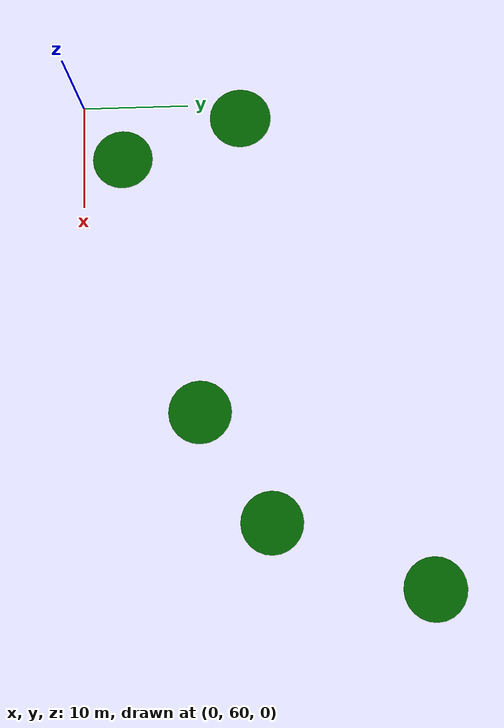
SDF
<sdf version="1.6">
 <world name="default">
  <model name="ground_plane">
   <static>1</static>
   <link name="link">
    <collision name="collision">
     <geometry><plane><normal>0 0 1</normal><size>100 100</size></plane></geometry>
     <surface><friction><ode><mu>100</mu><mu2>50</mu2></ode></friction></surface>
    </collision>
    <visual name="visual">
     <cast_shadows>0</cast_shadows>
     <geometry><plane><normal>0 0 1</normal><size>100 100</size></plane></geometry>
     <material>
      <script><uri>file://media/materials/scripts/gazebo.material</uri><name>Gazebo/Grey</name></script>
     </material>
    </visual>
   </link>
  </model>
  <model name="M16APM_point_clone_0">
   <link name="link">
    <inertial>
     <mass>1</mass>
     <inertia><ixx>0.145833</ixx><ixy>0</ixy><ixz>0</ixz><iyy>0.145833</iyy><iyz>0</iyz><izz>0.125</izz></inertia>
    </inertial>
    <gravity>0</gravity>
    <visual name="ModelPreview_1::link::visual_1">
     <geometry><cylinder><radius>3</radius><length>0.01</length></cylinder></geometry>
     <material>
      <script><name>Gazebo/Grey</name><uri>file://media/materials/scripts/gazebo.material</uri></script>
      <ambient>0 0.4 0 0</ambient>
      <diffuse>0 0.4 0 0</diffuse>
      <specular>0 0.41 0 0</specular>
      <emissive>0 0.4 0 0</emissive>
      <shader type="vertex"><normal_map>__default__</normal_map></shader>
     </material>
    </visual>
    <visual name="visual">
     <geometry><cylinder><radius>3</radius><length>0.005</length></cylinder></geometry>
     <material>
      <script><name>Gazebo/Grey</name><uri>file://media/materials/scripts/gazebo.material</uri></script>
      <ambient>0 0.4 0 0</ambient>
      <diffuse>0 0.4 0 0</diffuse>
      <specular>0 0.41 0 0</specular>
      <emissive>0 0.4 0 0</emissive>
      <shader type="vertex"><normal_map>__default__</normal_map></shader>
     </material>
    </visual>
   </link>
   <static>0</static>
   <pose>0.5 75 -2.1601 0 -0 0</pose>
  </model>
  <model name="M16APM_point_clone_0_clone_clone_clone_clone_clone_clone_clone_4">
   <link name="link">
    <inertial>
     <mass>1</mass>
     <inertia><ixx>0.145833</ixx><ixy>0</ixy><ixz>0</ixz><iyy>0.145833</iyy><iyz>0</iyz><izz>0.125</izz></inertia>
    </inertial>
    <gravity>0</gravity>
    <visual name="ModelPreview_1::link::visual_1">
     <geometry><cylinder><radius>3</radius><length>0.01</length></cylinder></geometry>
     <material>
      <script><name>Gazebo/Grey</name><uri>file://media/materials/scripts/gazebo.material</uri></script>
      <ambient>0 0.4 0 0</ambient>
      <diffuse>0 0.4 0 0</diffuse>
      <specular>0 0.41 0 0</specular>
      <emissive>0 0.4 0 0</emissive>
      <shader type="vertex"><normal_map>__default__</normal_map></shader>
     </material>
    </visual>
    <visual name="visual">
     <geometry><cylinder><radius>3</radius><length>0.005</length></cylinder></geometry>
     <material>
      <script><name>Gazebo/Grey</name><uri>file://media/materials/scripts/gazebo.material</uri></script>
      <ambient>0 0.4 0 0</ambient>
      <diffuse>0 0.4 0 0</diffuse>
      <specular>0 0.41 0 0</specular>
      <emissive>0 0.4 0 0</emissive>
      <shader type="vertex"><normal_map>__default__</normal_map></shader>
     </material>
    </visual>
   </link>
   <static>0</static>
   <pose>40 77 -4.2462 0 -0 0</pose>
  </model>
  <model name="M16APM_point_clone_0_clone_clone_clone_clone_clone_clone_clone_5">
   <link name="link">
    <inertial>
     <mass>1</mass>
     <inertia><ixx>0.145833</ixx><ixy>0</ixy><ixz>0</ixz><iyy>0.145833</iyy><iyz>0</iyz><izz>0.125</izz></inertia>
    </inertial>
    <gravity>0</gravity>
    <visual name="ModelPreview_1::link::visual_1">
     <geometry><cylinder><radius>3</radius><length>0.01</length></cylinder></geometry>
     <material>
      <script><name>Gazebo/Grey</name><uri>file://media/materials/scripts/gazebo.material</uri></script>
      <ambient>0 0.4 0 0</ambient>
      <diffuse>0 0.4 0 0</diffuse>
      <specular>0 0.41 0 0</specular>
      <emissive>0 0.4 0 0</emissive>
      <shader type="vertex"><normal_map>__default__</normal_map></shader>
     </material>
    </visual>
    <visual name="visual">
     <geometry><cylinder><radius>3</radius><length>0.005</length></cylinder></geometry>
     <material>
      <script><name>Gazebo/Grey</name><uri>file://media/materials/scripts/gazebo.material</uri></script>
      <ambient>0 0.4 0 0</ambient>
      <diffuse>0 0.4 0 0</diffuse>
      <specular>0 0.41 0 0</specular>
      <emissive>0 0.4 0 0</emissive>
      <shader type="vertex"><normal_map>__default__</normal_map></shader>
     </material>
    </visual>
   </link>
   <static>0</static>
   <pose>29.5 70.5 -2.6969 0 -0 0</pose>
  </model>
  <model name="M16APM_point_clone_0_clone_clone_clone_clone_clone_clone_clone_11">
   <link name="link">
    <inertial>
     <mass>1</mass>
     <inertia><ixx>0.145833</ixx><ixy>0</ixy><ixz>0</ixz><iyy>0.145833</iyy><iyz>0</iyz><izz>0.125</izz></inertia>
    </inertial>
    <gravity>0</gravity>
    <visual name="ModelPreview_1::link::visual_1">
     <geometry><cylinder><radius>3</radius><length>0.01</length></cylinder></geometry>
     <material>
      <script><name>Gazebo/Grey</name><uri>file://media/materials/scripts/gazebo.material</uri></script>
      <ambient>0 0.4 0 0</ambient>
      <diffuse>0 0.4 0 0</diffuse>
      <specular>0 0.41 0 0</specular>
      <emissive>0 0.4 0 0</emissive>
      <shader type="vertex"><normal_map>__default__</normal_map></shader>
     </material>
    </visual>
    <visual name="visual">
     <geometry><cylinder><radius>3</radius><length>0.005</length></cylinder></geometry>
     <material>
      <script><name>Gazebo/Grey</name><uri>file://media/materials/scripts/gazebo.material</uri></script>
      <ambient>0 0.4 0 0</ambient>
      <diffuse>0 0.4 0 0</diffuse>
      <specular>0 0.41 0 0</specular>
      <emissive>0 0.4 0 0</emissive>
      <shader type="vertex"><normal_map>__default__</normal_map></shader>
     </material>
    </visual>
   </link>
   <static>0</static>
   <pose>46.5 92 -3.9289 0 -0 0</pose>
  </model>
  <model name="M16APM_point_clone_0_clone_clone_clone_clone_clone_clone_clone_16">
   <link name="link">
    <inertial>
     <mass>1</mass>
     <inertia><ixx>0.145833</ixx><ixy>0</ixy><ixz>0</ixz><iyy>0.145833</iyy><iyz>0</iyz><izz>0.125</izz></inertia>
    </inertial>
    <gravity>0</gravity>
    <visual name="ModelPreview_1::link::visual_1">
     <geometry><cylinder><radius>3</radius><length>0.01</length></cylinder></geometry>
     <material>
      <script><name>Gazebo/Grey</name><uri>file://media/materials/scripts/gazebo.material</uri></script>
      <ambient>0 0.4 0 0</ambient>
      <diffuse>0 0.4 0 0</diffuse>
      <specular>0 0.41 0 0</specular>
      <emissive>0 0.4 0 0</emissive>
      <shader type="vertex"><normal_map>__default__</normal_map></shader>
     </material>
    </visual>
    <visual name="visual">
     <geometry><cylinder><radius>3</radius><length>0.005</length></cylinder></geometry>
     <material>
      <script><name>Gazebo/Grey</name><uri>file://media/materials/scripts/gazebo.material</uri></script>
      <ambient>0 0.4 0 0</ambient>
      <diffuse>0 0.4 0 0</diffuse>
      <specular>0 0.41 0 0</specular>
      <emissive>0 0.4 0 0</emissive>
      <shader type="vertex"><normal_map>__default__</normal_map></shader>
     </material>
    </visual>
   </link>
   <static>0</static>
   <pose>3.5 63 -4.6472 0 -0 0</pose>
  </model>
 </world>
</sdf>
